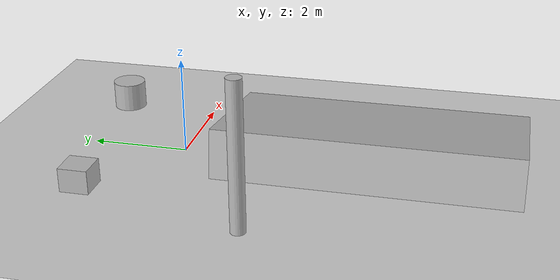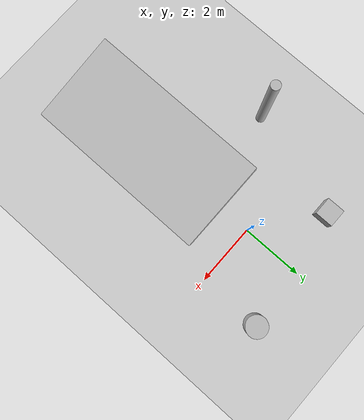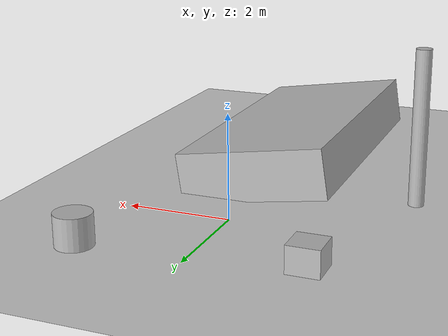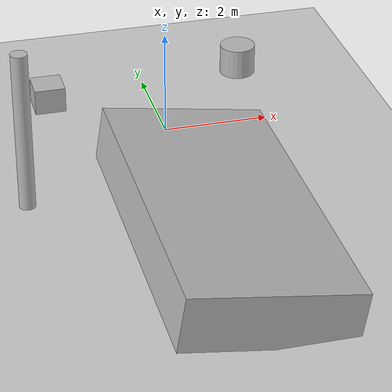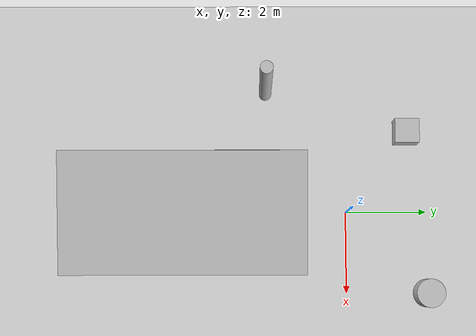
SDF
<?xml version="1.0"?>
<sdf version="1.6">
  <world name="outdoor">
    <include><uri>model://ground_plane</uri></include>
    <include><uri>model://sun</uri></include>

    <!-- منحدر خفيف -->
    <model name="ramp"><pose>0 -4 0.5 0 0.15 0</pose><link name="l">
      <collision name="c"><geometry><box><size>3 6 1</size></box></geometry></collision>
      <visual name="v"><geometry><box><size>3 6 1</size></box></geometry></visual>
    </link><static>true</static></model>

    <!-- “صخور/أشجار” (أسطوانات وصناديق) -->
    <model name="rock1"><pose>2 2 0.3 0 0 0</pose><link name="l">
      <collision name="c"><geometry><cylinder><radius>0.35</radius><length>0.6</length></cylinder></geometry></collision>
      <visual name="v"><geometry><cylinder><radius>0.35</radius><length>0.6</length></cylinder></geometry></visual>
    </link><static>true</static></model>
    <model name="rock2"><pose>-2 1.5 0.25 0 0 0</pose><link name="l">
      <collision name="c"><geometry><box><size>0.6 0.6 0.5</size></box></geometry></collision>
      <visual name="v"><geometry><box><size>0.6 0.6 0.5</size></box></geometry></visual>
    </link><static>true</static></model>
    <model name="tree"><pose>-3 -2 1.5 0 0 0</pose><link name="l">
      <collision name="c"><geometry><cylinder><radius>0.15</radius><length>3.0</length></cylinder></geometry></collision>
      <visual name="v"><geometry><cylinder><radius>0.15</radius><length>3.0</length></cylinder></geometry></visual>
    </link><static>true</static></model>
  </world>
</sdf>
